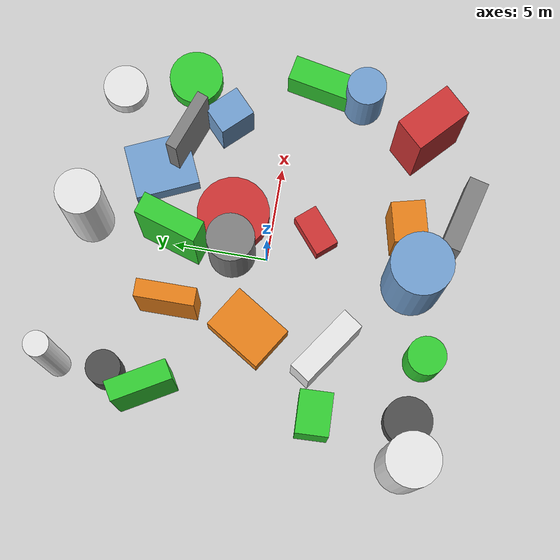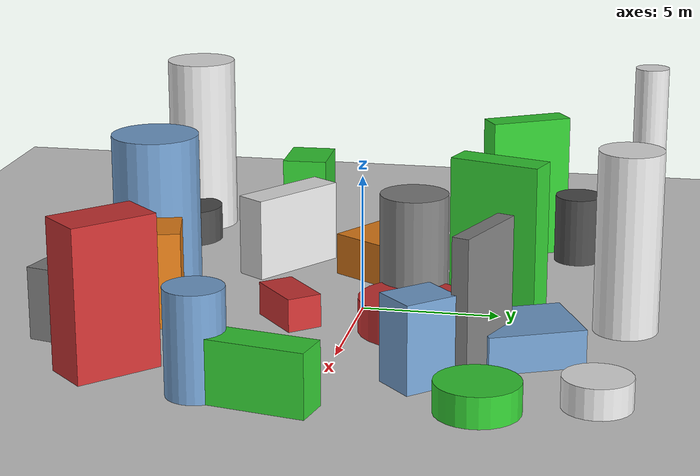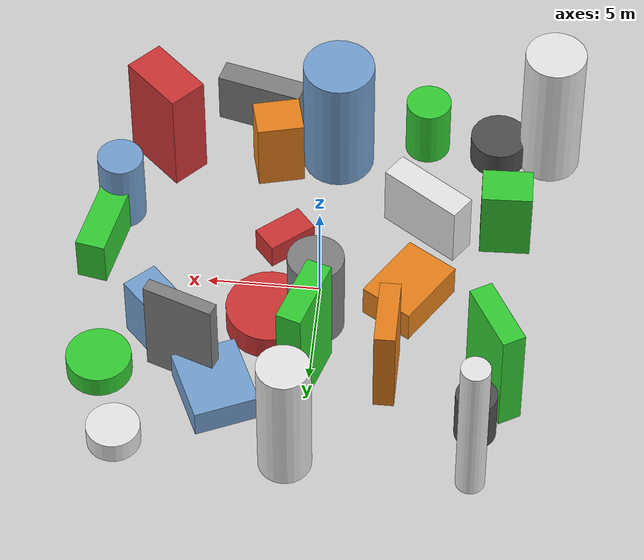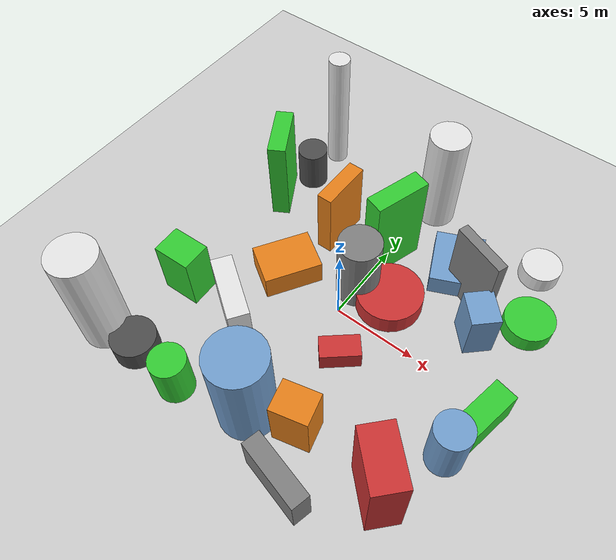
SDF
<?xml version='1.0'?>
<sdf version='1.6'>
  <world name='default'>
    <!-- Sun light -->
    <light name='sun' type='directional'>
      <cast_shadows>1</cast_shadows>
      <pose>0 0 10 0 0 0</pose>
      <diffuse>0.8 0.8 0.8 1</diffuse>
      <specular>0.2 0.2 0.2 1</specular>
      <attenuation>
        <range>1000</range>
        <constant>0.9</constant>
        <linear>0.01</linear>
        <quadratic>0.001</quadratic>
      </attenuation>
      <direction>-0.5 0.1 -0.9</direction>
    </light>

    <!-- Ground plane -->
    <model name='ground_plane'>
      <static>1</static>
      <link name='link'>
        <collision name='collision'>
          <geometry>
            <plane>
              <normal>0 0 1</normal>
              <size>100 100</size>
            </plane>
          </geometry>
          <surface>
            <contact>
              <collide_bitmask>65535</collide_bitmask>
              <ode/>
            </contact>
            <friction>
              <ode>
                <mu>100</mu>
                <mu2>50</mu2>
              </ode>
              <torsional><ode/></torsional>
            </friction>
            <bounce/>
          </surface>
          <max_contacts>10</max_contacts>
        </collision>
        <visual name='visual'>
          <cast_shadows>0</cast_shadows>
          <geometry>
            <plane>
              <normal>0 0 1</normal>
              <size>100 100</size>
            </plane>
          </geometry>
          <material>
            <script>
              <uri>file://media/materials/scripts/gazebo.material</uri>
              <n>Gazebo/Grey</n>
            </script>
          </material>
        </visual>
      </link>
    </model>

    <!-- Environment -->
    <magnetic_field>6e-06 2.3e-05 -4.2e-05</magnetic_field>
    <atmosphere type='adiabatic'/>
    <physics name='default_physics' default='0' type='ode'>
      <gravity>0 0 -9.8</gravity>
      <max_step_size>0.004</max_step_size>
      <real_time_factor>1</real_time_factor>
      <real_time_update_rate>250</real_time_update_rate>
    </physics>
    <scene>
      <ambient>0.4 0.4 0.4 1</ambient>
      <background>0.7 0.7 0.7 1</background>
      <shadows>1</shadows>
    </scene>
    <wind/>
    <spherical_coordinates>
      <surface_model>EARTH_WGS84</surface_model>
      <latitude_deg>0</latitude_deg>
      <longitude_deg>0</longitude_deg>
      <elevation>0</elevation>
      <heading_deg>0</heading_deg>
    </spherical_coordinates>

    <!-- ============ OBSTACLES (26) ============ -->
    <model name='obs_00'>
      <static>1</static>
      <link name='link'>
        <visual name='visual'>
          <geometry>
            <box>
              <size>3.9101 1.0438 2.6338</size>
            </box>
          </geometry>
          <material>
            <script>
              <n>Gazebo/Grey</n>
              <uri>file://media/materials/scripts/gazebo.material</uri>
            </script>
            <ambient>0.5 0.5 0.5 1</ambient>
          </material>
        </visual>
        <collision name='collision'>
          <geometry>
            <box>
              <size>3.9101 1.0438 2.6338</size>
            </box>
          </geometry>
          <max_contacts>10</max_contacts>
          <surface>
            <contact><ode/></contact>
            <bounce/>
            <friction>
              <ode><mu>1</mu><mu2>1</mu2></ode>
              <torsional><ode/></torsional>
            </friction>
          </surface>
        </collision>
      </link>
      <pose>3.5997 -9.8143 1.3169 0 0 2.8932</pose>
    </model>

    <model name='obs_01'>
      <static>1</static>
      <link name='link'>
        <visual name='visual'>
          <geometry>
            <box>
              <size>3.4208 2.8837 1.3306</size>
            </box>
          </geometry>
          <material>
            <script>
              <n>Gazebo/Blue</n>
              <uri>file://media/materials/scripts/gazebo.material</uri>
            </script>
            <ambient>0.447 0.624 0.812 1</ambient>
          </material>
        </visual>
        <collision name='collision'>
          <geometry>
            <box>
              <size>3.4208 2.8837 1.3306</size>
            </box>
          </geometry>
          <max_contacts>10</max_contacts>
          <surface>
            <contact><ode/></contact>
            <bounce/>
            <friction>
              <ode><mu>1</mu><mu2>1</mu2></ode>
              <torsional><ode/></torsional>
            </friction>
          </surface>
        </collision>
      </link>
      <pose>3.9119 6.3422 0.6653 0 0 1.9927</pose>
    </model>

    <model name='obs_02'>
      <static>1</static>
      <link name='link'>
        <visual name='visual'>
          <geometry>
            <box>
              <size>3.8370 1.3352 2.2224</size>
            </box>
          </geometry>
          <material>
            <script>
              <n>Gazebo/Green</n>
              <uri>file://media/materials/scripts/gazebo.material</uri>
            </script>
            <ambient>0.2 0.8 0.2 1</ambient>
          </material>
        </visual>
        <collision name='collision'>
          <geometry>
            <box>
              <size>3.8370 1.3352 2.2224</size>
            </box>
          </geometry>
          <max_contacts>10</max_contacts>
          <surface>
            <contact><ode/></contact>
            <bounce/>
            <friction>
              <ode><mu>1</mu><mu2>1</mu2></ode>
              <torsional><ode/></torsional>
            </friction>
          </surface>
        </collision>
      </link>
      <pose>9.7631 -1.5537 1.1112 0 0 1.3744</pose>
    </model>

    <model name='obs_03'>
      <static>1</static>
      <link name='link'>
        <visual name='visual'>
          <geometry>
            <cylinder>
              <radius>1.2827</radius>
              <length>1.3852</length>
            </cylinder>
          </geometry>
          <material>
            <script>
              <n>Gazebo/DarkGrey</n>
              <uri>file://media/materials/scripts/gazebo.material</uri>
            </script>
            <ambient>0.3 0.3 0.3 1</ambient>
          </material>
        </visual>
        <collision name='collision'>
          <geometry>
            <cylinder>
              <radius>1.2827</radius>
              <length>1.3852</length>
            </cylinder>
          </geometry>
          <max_contacts>10</max_contacts>
          <surface>
            <contact><ode/></contact>
            <bounce/>
            <friction>
              <ode><mu>1</mu><mu2>1</mu2></ode>
              <torsional><ode/></torsional>
            </friction>
          </surface>
        </collision>
      </link>
      <pose>-7.3565 -8.5834 0.6926 0 0 0.3644</pose>
    </model>

    <model name='obs_04'>
      <static>1</static>
      <link name='link'>
        <visual name='visual'>
          <geometry>
            <box>
              <size>3.0923 0.9181 4.5395</size>
            </box>
          </geometry>
          <material>
            <script>
              <n>Gazebo/Orange</n>
              <uri>file://media/materials/scripts/gazebo.material</uri>
            </script>
            <ambient>0.9 0.5 0.1 1</ambient>
          </material>
        </visual>
        <collision name='collision'>
          <geometry>
            <box>
              <size>3.0923 0.9181 4.5395</size>
            </box>
          </geometry>
          <max_contacts>10</max_contacts>
          <surface>
            <contact><ode/></contact>
            <bounce/>
            <friction>
              <ode><mu>1</mu><mu2>1</mu2></ode>
              <torsional><ode/></torsional>
            </friction>
          </surface>
        </collision>
      </link>
      <pose>-3.3386 4.6153 2.2698 0 0 1.57</pose>
    </model>

    <model name='obs_05'>
      <static>1</static>
      <link name='link'>
        <visual name='visual'>
          <geometry>
            <box>
              <size>2.2374 1.7135 3.5861</size>
            </box>
          </geometry>
          <material>
            <script>
              <n>Gazebo/Green</n>
              <uri>file://media/materials/scripts/gazebo.material</uri>
            </script>
            <ambient>0.2 0.8 0.2 1</ambient>
          </material>
        </visual>
        <collision name='collision'>
          <geometry>
            <box>
              <size>2.2374 1.7135 3.5861</size>
            </box>
          </geometry>
          <max_contacts>10</max_contacts>
          <surface>
            <contact><ode/></contact>
            <bounce/>
            <friction>
              <ode><mu>1</mu><mu2>1</mu2></ode>
              <torsional><ode/></torsional>
            </friction>
          </surface>
        </collision>
      </link>
      <pose>-7.9515 -3.7330 1.7931 0 0 0.0357</pose>
    </model>

    <model name='obs_06'>
      <static>1</static>
      <link name='link'>
        <visual name='visual'>
          <geometry>
            <box>
              <size>1.8015 3.1242 5.3673</size>
            </box>
          </geometry>
          <material>
            <script>
              <n>Gazebo/Red</n>
              <uri>file://media/materials/scripts/gazebo.material</uri>
            </script>
            <ambient>0.8 0.2 0.2 1</ambient>
          </material>
        </visual>
        <collision name='collision'>
          <geometry>
            <box>
              <size>1.8015 3.1242 5.3673</size>
            </box>
          </geometry>
          <max_contacts>10</max_contacts>
          <surface>
            <contact><ode/></contact>
            <bounce/>
            <friction>
              <ode><mu>1</mu><mu2>1</mu2></ode>
              <torsional><ode/></torsional>
            </friction>
          </surface>
        </collision>
      </link>
      <pose>7.6198 -7.2574 2.6837 0 0 0.8144</pose>
    </model>

    <model name='obs_07'>
      <static>1</static>
      <link name='link'>
        <visual name='visual'>
          <geometry>
            <box>
              <size>3.2000 0.6027 5.0355</size>
            </box>
          </geometry>
          <material>
            <script>
              <n>Gazebo/Grey</n>
              <uri>file://media/materials/scripts/gazebo.material</uri>
            </script>
            <ambient>0.5 0.5 0.5 1</ambient>
          </material>
        </visual>
        <collision name='collision'>
          <geometry>
            <box>
              <size>3.2000 0.6027 5.0355</size>
            </box>
          </geometry>
          <max_contacts>10</max_contacts>
          <surface>
            <contact><ode/></contact>
            <bounce/>
            <friction>
              <ode><mu>1</mu><mu2>1</mu2></ode>
              <torsional><ode/></torsional>
            </friction>
          </surface>
        </collision>
      </link>
      <pose>5.4692 5.0632 2.5178 0 0 2.7848</pose>
    </model>

    <model name='obs_08'>
      <static>1</static>
      <link name='link'>
        <visual name='visual'>
          <geometry>
            <cylinder>
              <radius>0.6365</radius>
              <length>7.8254</length>
            </cylinder>
          </geometry>
          <material>
            <script>
              <n>Gazebo/White</n>
              <uri>file://media/materials/scripts/gazebo.material</uri>
            </script>
            <ambient>0.9 0.9 0.9 1</ambient>
          </material>
        </visual>
        <collision name='collision'>
          <geometry>
            <cylinder>
              <radius>0.6365</radius>
              <length>7.8254</length>
            </cylinder>
          </geometry>
          <max_contacts>10</max_contacts>
          <surface>
            <contact><ode/></contact>
            <bounce/>
            <friction>
              <ode><mu>1</mu><mu2>1</mu2></ode>
              <torsional><ode/></torsional>
            </friction>
          </surface>
        </collision>
      </link>
      <pose>-7.3371 9.8588 3.9127 0 0 1.6457</pose>
    </model>

    <model name='obs_09'>
      <static>1</static>
      <link name='link'>
        <visual name='visual'>
          <geometry>
            <box>
              <size>2.0932 1.7604 3.4981</size>
            </box>
          </geometry>
          <material>
            <script>
              <n>Gazebo/Orange</n>
              <uri>file://media/materials/scripts/gazebo.material</uri>
            </script>
            <ambient>0.9 0.5 0.1 1</ambient>
          </material>
        </visual>
        <collision name='collision'>
          <geometry>
            <box>
              <size>2.0932 1.7604 3.4981</size>
            </box>
          </geometry>
          <max_contacts>10</max_contacts>
          <surface>
            <contact><ode/></contact>
            <bounce/>
            <friction>
              <ode><mu>1</mu><mu2>1</mu2></ode>
              <torsional><ode/></torsional>
            </friction>
          </surface>
        </collision>
      </link>
      <pose>2.5616 -6.9725 1.7490 0 0 0.2421</pose>
    </model>

    <model name='obs_10'>
      <static>1</static>
      <link name='link'>
        <visual name='visual'>
          <geometry>
            <box>
              <size>1.0506 3.2067 5.4713</size>
            </box>
          </geometry>
          <material>
            <script>
              <n>Gazebo/Green</n>
              <uri>file://media/materials/scripts/gazebo.material</uri>
            </script>
            <ambient>0.2 0.8 0.2 1</ambient>
          </material>
        </visual>
        <collision name='collision'>
          <geometry>
            <box>
              <size>1.0506 3.2067 5.4713</size>
            </box>
          </geometry>
          <max_contacts>10</max_contacts>
          <surface>
            <contact><ode/></contact>
            <bounce/>
            <friction>
              <ode><mu>1</mu><mu2>1</mu2></ode>
              <torsional><ode/></torsional>
            </friction>
          </surface>
        </collision>
      </link>
      <pose>-7.9907 5.0489 2.7357 0 0 0.5243</pose>
    </model>

    <model name='obs_11'>
      <static>1</static>
      <link name='link'>
        <visual name='visual'>
          <geometry>
            <box>
              <size>1.2994 2.2809 1.2202</size>
            </box>
          </geometry>
          <material>
            <script>
              <n>Gazebo/Red</n>
              <uri>file://media/materials/scripts/gazebo.material</uri>
            </script>
            <ambient>0.8 0.2 0.2 1</ambient>
          </material>
        </visual>
        <collision name='collision'>
          <geometry>
            <box>
              <size>1.2994 2.2809 1.2202</size>
            </box>
          </geometry>
          <max_contacts>10</max_contacts>
          <surface>
            <contact><ode/></contact>
            <bounce/>
            <friction>
              <ode><mu>1</mu><mu2>1</mu2></ode>
              <torsional><ode/></torsional>
            </friction>
          </surface>
        </collision>
      </link>
      <pose>1.7915 -2.3194 0.6101 0 0 2.2707</pose>
    </model>

    <model name='obs_12'>
      <static>1</static>
      <link name='link'>
        <visual name='visual'>
          <geometry>
            <cylinder>
              <radius>1.0228</radius>
              <length>3.6809</length>
            </cylinder>
          </geometry>
          <material>
            <script>
              <n>Gazebo/Blue</n>
              <uri>file://media/materials/scripts/gazebo.material</uri>
            </script>
            <ambient>0.447 0.624 0.812 1</ambient>
          </material>
        </visual>
        <collision name='collision'>
          <geometry>
            <cylinder>
              <radius>1.0228</radius>
              <length>3.6809</length>
            </cylinder>
          </geometry>
          <max_contacts>10</max_contacts>
          <surface>
            <contact><ode/></contact>
            <bounce/>
            <friction>
              <ode><mu>1</mu><mu2>1</mu2></ode>
              <torsional><ode/></torsional>
            </friction>
          </surface>
        </collision>
      </link>
      <pose>9.2650 -3.7099 1.8404 0 0 0.7683</pose>
    </model>

    <model name='obs_13'>
      <static>1</static>
      <link name='link'>
        <visual name='visual'>
          <geometry>
            <cylinder>
              <radius>1.9266</radius>
              <length>1.2475</length>
            </cylinder>
          </geometry>
          <material>
            <script>
              <n>Gazebo/Red</n>
              <uri>file://media/materials/scripts/gazebo.material</uri>
            </script>
            <ambient>0.8 0.2 0.2 1</ambient>
          </material>
        </visual>
        <collision name='collision'>
          <geometry>
            <cylinder>
              <radius>1.9266</radius>
              <length>1.2475</length>
            </cylinder>
          </geometry>
          <max_contacts>10</max_contacts>
          <surface>
            <contact><ode/></contact>
            <bounce/>
            <friction>
              <ode><mu>1</mu><mu2>1</mu2></ode>
              <torsional><ode/></torsional>
            </friction>
          </surface>
        </collision>
      </link>
      <pose>2.0002 2.1519 0.6238 0 0 0.5622</pose>
    </model>

    <model name='obs_14'>
      <static>1</static>
      <link name='link'>
        <visual name='visual'>
          <geometry>
            <box>
              <size>1.9678 1.6263 3.0813</size>
            </box>
          </geometry>
          <material>
            <script>
              <n>Gazebo/Blue</n>
              <uri>file://media/materials/scripts/gazebo.material</uri>
            </script>
            <ambient>0.447 0.624 0.812 1</ambient>
          </material>
        </visual>
        <collision name='collision'>
          <geometry>
            <box>
              <size>1.9678 1.6263 3.0813</size>
            </box>
          </geometry>
          <max_contacts>10</max_contacts>
          <surface>
            <contact><ode/></contact>
            <bounce/>
            <friction>
              <ode><mu>1</mu><mu2>1</mu2></ode>
              <torsional><ode/></torsional>
            </friction>
          </surface>
        </collision>
      </link>
      <pose>6.9578 3.1681 1.5406 0 0 2.3269</pose>
    </model>

    <model name='obs_15'>
      <static>1</static>
      <link name='link'>
        <visual name='visual'>
          <geometry>
            <box>
              <size>3.3910 2.5004 1.5970</size>
            </box>
          </geometry>
          <material>
            <script>
              <n>Gazebo/Orange</n>
              <uri>file://media/materials/scripts/gazebo.material</uri>
            </script>
            <ambient>0.9 0.5 0.1 1</ambient>
          </material>
        </visual>
        <collision name='collision'>
          <geometry>
            <box>
              <size>3.3910 2.5004 1.5970</size>
            </box>
          </geometry>
          <max_contacts>10</max_contacts>
          <surface>
            <contact><ode/></contact>
            <bounce/>
            <friction>
              <ode><mu>1</mu><mu2>1</mu2></ode>
              <torsional><ode/></torsional>
            </friction>
          </surface>
        </collision>
      </link>
      <pose>-3.9670 0.3550 0.7985 0 0 1.0051</pose>
    </model>

    <model name='obs_16'>
      <static>1</static>
      <link name='link'>
        <visual name='visual'>
          <geometry>
            <box>
              <size>1.1277 3.3152 5.9071</size>
            </box>
          </geometry>
          <material>
            <script>
              <n>Gazebo/Green</n>
              <uri>file://media/materials/scripts/gazebo.material</uri>
            </script>
            <ambient>0.2 0.8 0.2 1</ambient>
          </material>
        </visual>
        <collision name='collision'>
          <geometry>
            <box>
              <size>1.1277 3.3152 5.9071</size>
            </box>
          </geometry>
          <max_contacts>10</max_contacts>
          <surface>
            <contact><ode/></contact>
            <bounce/>
            <friction>
              <ode><mu>1</mu><mu2>1</mu2></ode>
              <torsional><ode/></torsional>
            </friction>
          </surface>
        </collision>
      </link>
      <pose>0.1905 4.9569 2.9535 0 0 2.8335</pose>
    </model>

    <model name='obs_17'>
      <static>1</static>
      <link name='link'>
        <visual name='visual'>
          <geometry>
            <cylinder>
              <radius>1.0104</radius>
              <length>2.9761</length>
            </cylinder>
          </geometry>
          <material>
            <script>
              <n>Gazebo/Green</n>
              <uri>file://media/materials/scripts/gazebo.material</uri>
            </script>
            <ambient>0.2 0.8 0.2 1</ambient>
          </material>
        </visual>
        <collision name='collision'>
          <geometry>
            <cylinder>
              <radius>1.0104</radius>
              <length>2.9761</length>
            </cylinder>
          </geometry>
          <max_contacts>10</max_contacts>
          <surface>
            <contact><ode/></contact>
            <bounce/>
            <friction>
              <ode><mu>1</mu><mu2>1</mu2></ode>
              <torsional><ode/></torsional>
            </friction>
          </surface>
        </collision>
      </link>
      <pose>-4.0892 -8.9086 1.4881 0 0 0.2165</pose>
    </model>

    <model name='obs_18'>
      <static>1</static>
      <link name='link'>
        <visual name='visual'>
          <geometry>
            <cylinder>
              <radius>1.1732</radius>
              <length>1.0558</length>
            </cylinder>
          </geometry>
          <material>
            <script>
              <n>Gazebo/White</n>
              <uri>file://media/materials/scripts/gazebo.material</uri>
            </script>
            <ambient>0.9 0.9 0.9 1</ambient>
          </material>
        </visual>
        <collision name='collision'>
          <geometry>
            <cylinder>
              <radius>1.1732</radius>
              <length>1.0558</length>
            </cylinder>
          </geometry>
          <max_contacts>10</max_contacts>
          <surface>
            <contact><ode/></contact>
            <bounce/>
            <friction>
              <ode><mu>1</mu><mu2>1</mu2></ode>
              <torsional><ode/></torsional>
            </friction>
          </surface>
        </collision>
      </link>
      <pose>7.9583 9.0934 0.5279 0 0 1.0282</pose>
    </model>

    <model name='obs_19'>
      <static>1</static>
      <link name='link'>
        <visual name='visual'>
          <geometry>
            <cylinder>
              <radius>1.6013</radius>
              <length>6.1770</length>
            </cylinder>
          </geometry>
          <material>
            <script>
              <n>Gazebo/Blue</n>
              <uri>file://media/materials/scripts/gazebo.material</uri>
            </script>
            <ambient>0.447 0.624 0.812 1</ambient>
          </material>
        </visual>
        <collision name='collision'>
          <geometry>
            <cylinder>
              <radius>1.6013</radius>
              <length>6.1770</length>
            </cylinder>
          </geometry>
          <max_contacts>10</max_contacts>
          <surface>
            <contact><ode/></contact>
            <bounce/>
            <friction>
              <ode><mu>1</mu><mu2>1</mu2></ode>
              <torsional><ode/></torsional>
            </friction>
          </surface>
        </collision>
      </link>
      <pose>-0.1022 -7.7451 3.0885 0 0 0.9161</pose>
    </model>

    <model name='obs_20'>
      <static>1</static>
      <link name='link'>
        <visual name='visual'>
          <geometry>
            <cylinder>
              <radius>1.2446</radius>
              <length>4.4535</length>
            </cylinder>
          </geometry>
          <material>
            <script>
              <n>Gazebo/Grey</n>
              <uri>file://media/materials/scripts/gazebo.material</uri>
            </script>
            <ambient>0.5 0.5 0.5 1</ambient>
          </material>
        </visual>
        <collision name='collision'>
          <geometry>
            <cylinder>
              <radius>1.2446</radius>
              <length>4.4535</length>
            </cylinder>
          </geometry>
          <max_contacts>10</max_contacts>
          <surface>
            <contact><ode/></contact>
            <bounce/>
            <friction>
              <ode><mu>1</mu><mu2>1</mu2></ode>
              <torsional><ode/></torsional>
            </friction>
          </surface>
        </collision>
      </link>
      <pose>-0.0083 1.8786 2.2268 0 0 1.4575</pose>
    </model>

    <model name='obs_21'>
      <static>1</static>
      <link name='link'>
        <visual name='visual'>
          <geometry>
            <cylinder>
              <radius>1.1611</radius>
              <length>6.5718</length>
            </cylinder>
          </geometry>
          <material>
            <script>
              <n>Gazebo/White</n>
              <uri>file://media/materials/scripts/gazebo.material</uri>
            </script>
            <ambient>0.9 0.9 0.9 1</ambient>
          </material>
        </visual>
        <collision name='collision'>
          <geometry>
            <cylinder>
              <radius>1.1611</radius>
              <length>6.5718</length>
            </cylinder>
          </geometry>
          <max_contacts>10</max_contacts>
          <surface>
            <contact><ode/></contact>
            <bounce/>
            <friction>
              <ode><mu>1</mu><mu2>1</mu2></ode>
              <torsional><ode/></torsional>
            </friction>
          </surface>
        </collision>
      </link>
      <pose>0.5657 9.5539 3.2859 0 0 2.3011</pose>
    </model>

    <model name='obs_22'>
      <static>1</static>
      <link name='link'>
        <visual name='visual'>
          <geometry>
            <cylinder>
              <radius>0.9086</radius>
              <length>2.6310</length>
            </cylinder>
          </geometry>
          <material>
            <script>
              <n>Gazebo/DarkGrey</n>
              <uri>file://media/materials/scripts/gazebo.material</uri>
            </script>
            <ambient>0.3 0.3 0.3 1</ambient>
          </material>
        </visual>
        <collision name='collision'>
          <geometry>
            <cylinder>
              <radius>0.9086</radius>
              <length>2.6310</length>
            </cylinder>
          </geometry>
          <max_contacts>10</max_contacts>
          <surface>
            <contact><ode/></contact>
            <bounce/>
            <friction>
              <ode><mu>1</mu><mu2>1</mu2></ode>
              <torsional><ode/></torsional>
            </friction>
          </surface>
        </collision>
      </link>
      <pose>-7.3603 7.2163 1.3155 0 0 0.0200</pose>
    </model>

    <model name='obs_23'>
      <static>1</static>
      <link name='link'>
        <visual name='visual'>
          <geometry>
            <cylinder>
              <radius>1.4329</radius>
              <length>1.0672</length>
            </cylinder>
          </geometry>
          <material>
            <script>
              <n>Gazebo/Green</n>
              <uri>file://media/materials/scripts/gazebo.material</uri>
            </script>
            <ambient>0.2 0.8 0.2 1</ambient>
          </material>
        </visual>
        <collision name='collision'>
          <geometry>
            <cylinder>
              <radius>1.4329</radius>
              <length>1.0672</length>
            </cylinder>
          </geometry>
          <max_contacts>10</max_contacts>
          <surface>
            <contact><ode/></contact>
            <bounce/>
            <friction>
              <ode><mu>1</mu><mu2>1</mu2></ode>
              <torsional><ode/></torsional>
            </friction>
          </surface>
        </collision>
      </link>
      <pose>9.0891 5.4073 0.5336 0 0 1.9979</pose>
    </model>

    <model name='obs_24'>
      <static>1</static>
      <link name='link'>
        <visual name='visual'>
          <geometry>
            <cylinder>
              <radius>1.3660</radius>
              <length>6.9430</length>
            </cylinder>
          </geometry>
          <material>
            <script>
              <n>Gazebo/White</n>
              <uri>file://media/materials/scripts/gazebo.material</uri>
            </script>
            <ambient>0.9 0.9 0.9 1</ambient>
          </material>
        </visual>
        <collision name='collision'>
          <geometry>
            <cylinder>
              <radius>1.3660</radius>
              <length>6.9430</length>
            </cylinder>
          </geometry>
          <max_contacts>10</max_contacts>
          <surface>
            <contact><ode/></contact>
            <bounce/>
            <friction>
              <ode><mu>1</mu><mu2>1</mu2></ode>
              <torsional><ode/></torsional>
            </friction>
          </surface>
        </collision>
      </link>
      <pose>-9.6662 -8.6493 3.4715 0 0 0.0046</pose>
    </model>

    <model name='obs_25'>
      <static>1</static>
      <link name='link'>
        <visual name='visual'>
          <geometry>
            <box>
              <size>1.2182 3.9409 3.0991</size>
            </box>
          </geometry>
          <material>
            <script>
              <n>Gazebo/White</n>
              <uri>file://media/materials/scripts/gazebo.material</uri>
            </script>
            <ambient>0.9 0.9 0.9 1</ambient>
          </material>
        </visual>
        <collision name='collision'>
          <geometry>
            <box>
              <size>1.2182 3.9409 3.0991</size>
            </box>
          </geometry>
          <max_contacts>10</max_contacts>
          <surface>
            <contact><ode/></contact>
            <bounce/>
            <friction>
              <ode><mu>1</mu><mu2>1</mu2></ode>
              <torsional><ode/></torsional>
            </friction>
          </surface>
        </collision>
      </link>
      <pose>-4.4506 -3.8019 1.5495 0 0 0.9661</pose>
    </model>

    <!-- GUI camera -->
    <gui fullscreen='0'>
      <camera name='user_camera'>
        <pose>-15 0 18 0 0.85 0.15</pose>
        <view_controller>orbit</view_controller>
        <projection_type>perspective</projection_type>
      </camera>
    </gui>
  </world>
</sdf>
